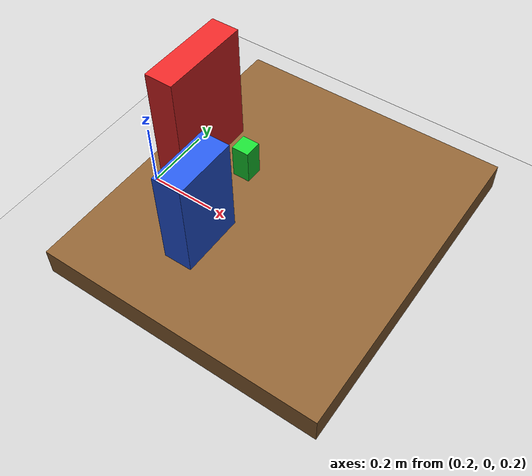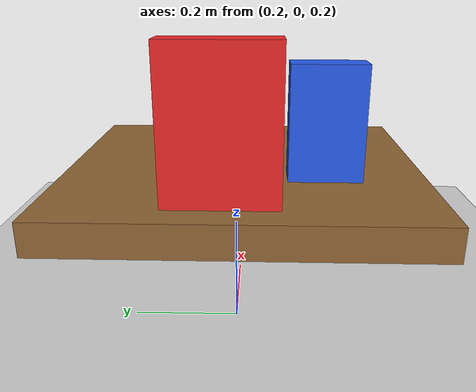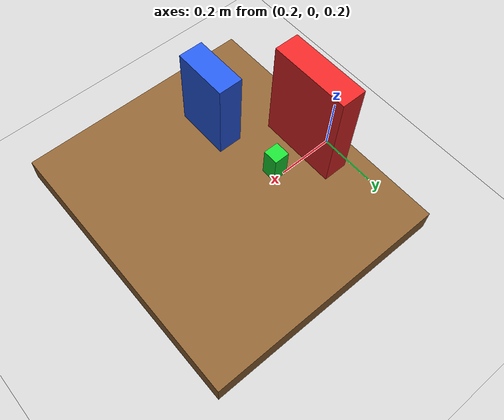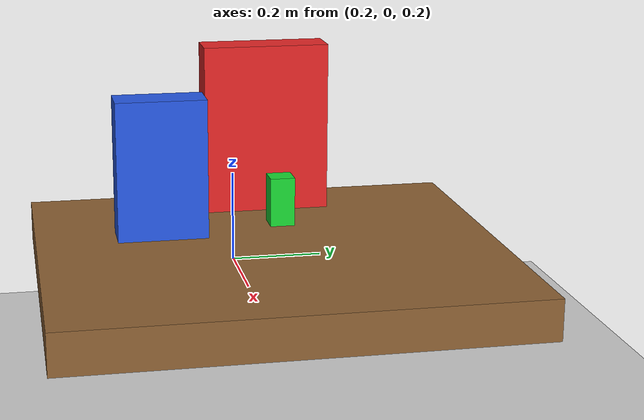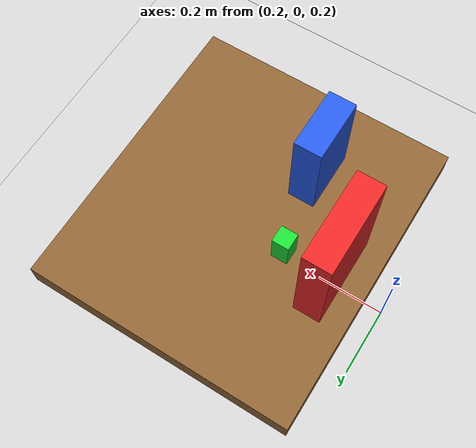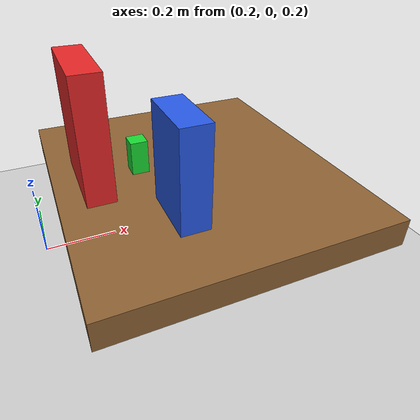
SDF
<?xml version="1.0"?>
<!--
  NON-PHYSICAL LEGACY DEMO WORLD.
  Loading this world exposes a Gazebo fixed-joint attachment service.  It must
  never be used for physical-contact grasp acceptance.
-->
<sdf version="1.6">
  <world name="handarm_pick_obstacle_nonphysical_attachment">
    <gravity>0 0 -9.81</gravity>
    <physics name="ode" type="ode">
      <max_step_size>0.001</max_step_size>
      <real_time_update_rate>1000</real_time_update_rate>
      <ode>
        <solver>
          <type>quick</type>
          <iters>100</iters>
          <sor>1.3</sor>
        </solver>
        <constraints>
          <cfm>0.0</cfm>
          <erp>0.2</erp>
          <contact_max_correcting_vel>0.1</contact_max_correcting_vel>
          <contact_surface_layer>0.001</contact_surface_layer>
        </constraints>
      </ode>
    </physics>
    <include><uri>model://ground_plane</uri></include>
    <include><uri>model://sun</uri></include>

    <plugin name="handarm_deterministic_attach"
            filename="libhandarm_deterministic_attach_plugin.so">
      <serviceName>/handarm_sim_demo/set_object_attached</serviceName>
      <parentModel>robot</parentModel>
      <parentLink>link_6</parentLink>
      <childModel>target_object</childModel>
      <childLink>object_link</childLink>
    </plugin>

    <model name="work_table">
      <static>true</static>
      <pose>0.65 0 0.33 0 0 0</pose>
      <link name="table_link">
        <collision name="collision">
          <geometry><box><size>0.80 0.90 0.08</size></box></geometry>
          <surface><friction><ode><mu>0.8</mu><mu2>0.8</mu2></ode></friction></surface>
        </collision>
        <visual name="visual">
          <geometry><box><size>0.80 0.90 0.08</size></box></geometry>
          <material><ambient>0.35 0.25 0.15 1</ambient><diffuse>0.55 0.38 0.20 1</diffuse></material>
        </visual>
      </link>
    </model>

    <model name="target_object">
      <static>false</static>
      <pose>0.50 0.05 0.42 0 0 0</pose>
      <link name="object_link">
        <inertial><mass>0.10</mass><inertia><ixx>0.000104</ixx><iyy>0.000104</iyy><izz>0.000042</izz></inertia></inertial>
        <collision name="collision">
          <geometry><box><size>0.05 0.05 0.10</size></box></geometry>
          <surface><friction><ode><mu>1.0</mu><mu2>1.0</mu2></ode></friction></surface>
        </collision>
        <visual name="visual">
          <geometry><box><size>0.05 0.05 0.10</size></box></geometry>
          <material><ambient>0.10 0.65 0.15 1</ambient><diffuse>0.10 0.85 0.20 1</diffuse></material>
        </visual>
      </link>
    </model>

    <model name="obstacle_a">
      <static>true</static>
      <pose>0.36 0.04 0.545 0 0 0</pose>
      <link name="obstacle_link">
        <collision name="collision"><geometry><box><size>0.08 0.26 0.35</size></box></geometry></collision>
        <visual name="visual">
          <geometry><box><size>0.08 0.26 0.35</size></box></geometry>
          <material><ambient>0.75 0.10 0.10 1</ambient><diffuse>0.90 0.15 0.15 1</diffuse></material>
        </visual>
      </link>
    </model>

    <model name="obstacle_b">
      <static>true</static>
      <pose>0.54 -0.20 0.51 0 0 0</pose>
      <link name="obstacle_link">
        <collision name="collision"><geometry><box><size>0.08 0.18 0.28</size></box></geometry></collision>
        <visual name="visual">
          <geometry><box><size>0.08 0.18 0.28</size></box></geometry>
          <material><ambient>0.10 0.25 0.75 1</ambient><diffuse>0.15 0.35 0.90 1</diffuse></material>
        </visual>
      </link>
    </model>

    <scene><ambient>0.5 0.5 0.5 1</ambient><background>0.7 0.7 0.7 1</background></scene>
  </world>
</sdf>
